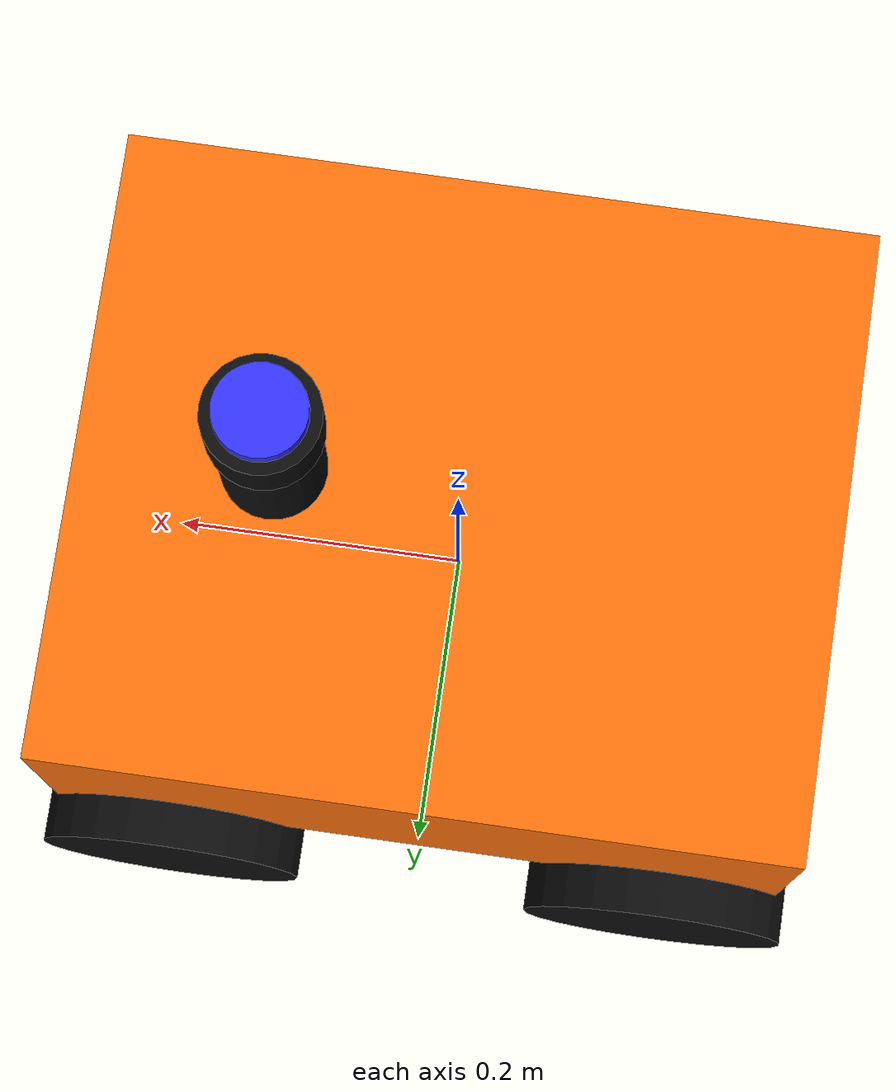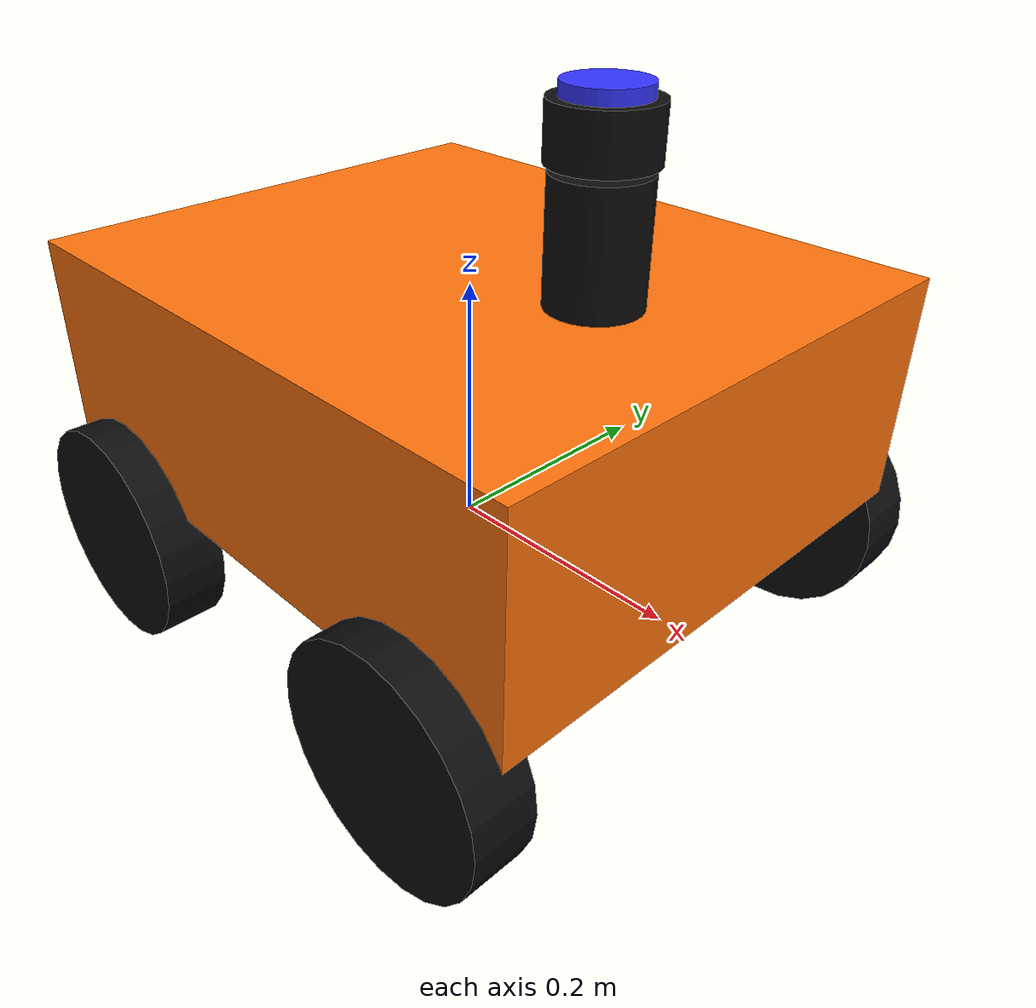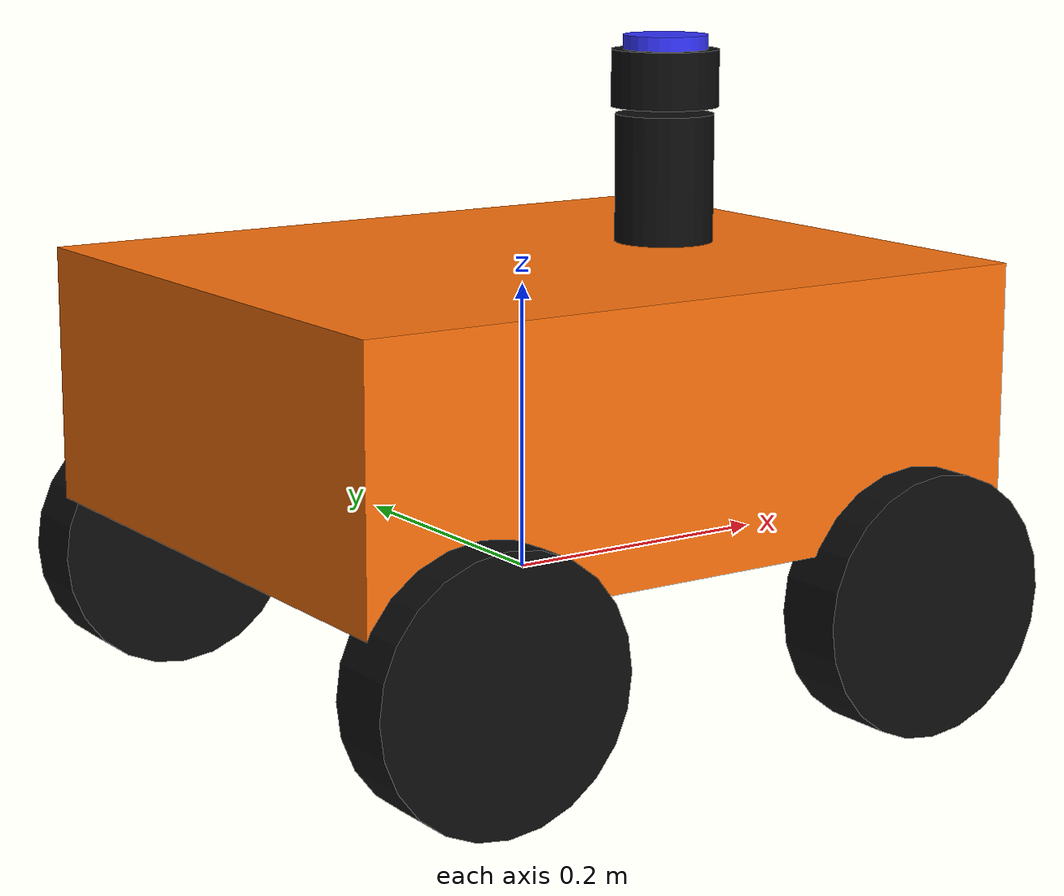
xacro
<?xml version="1.0"?>
<robot xmlns:xacro="http://www.ros.org/wiki/xacro" name="scout_bot">

    <xacro:include filename="inertial_macros.xacro"/>
    <xacro:include filename="robot_core.xacro"/>
    <xacro:include filename="gazebo_control.xacro"/>
    <xacro:include filename="lidar.xacro"/>

</robot>

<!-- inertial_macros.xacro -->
<robot xmlns:xacro="http://www.ros.org/wiki/xacro">

    <xacro:macro name="inertial_sphere" params="mass radius *origin">
        <inertial>
            <xacro:insert_block name="origin"/>
            <mass value="${mass}" />
            <inertia ixx="${(2/5) * mass * (radius*radius)}" ixy="0.0" ixz="0.0"
                     iyy="${(2/5) * mass * (radius*radius)}" iyz="0.0"
                     izz="${(2/5) * mass * (radius*radius)}" />
        </inertial>
    </xacro:macro>

    <xacro:macro name="inertial_box" params="mass x y z *origin">
        <inertial>
            <xacro:insert_block name="origin"/>
            <mass value="${mass}" />
            <inertia ixx="${(1/12) * mass * (y*y+z*z)}" ixy="0.0" ixz="0.0"
                     iyy="${(1/12) * mass * (x*x+z*z)}" iyz="0.0"
                     izz="${(1/12) * mass * (x*x+y*y)}" />
        </inertial>
    </xacro:macro>

    <xacro:macro name="inertial_cylinder" params="mass length radius *origin">
        <inertial>
            <xacro:insert_block name="origin"/>
            <mass value="${mass}" />
            <inertia ixx="${(1/12) * mass * (3*radius*radius + length*length)}" ixy="0.0" ixz="0.0"
                     iyy="${(1/12) * mass * (3*radius*radius + length*length)}" iyz="0.0"
                     izz="${(1/2) * mass * (radius*radius)}" />
        </inertial>
    </xacro:macro>

</robot>

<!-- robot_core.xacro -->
<robot xmlns:xacro="http://www.ros.org/wiki/xacro">

    <!-- Geometry constants (metres) -->
    <xacro:property name="chassis_length" value="0.50"/>
    <xacro:property name="chassis_width"  value="0.42"/>
    <xacro:property name="chassis_height" value="0.18"/>
    <xacro:property name="wheel_radius"   value="0.09"/>
    <xacro:property name="wheel_width"    value="0.05"/>
    <xacro:property name="wheel_x"        value="0.17"/>   <!-- half wheel base -->
    <xacro:property name="wheel_y"        value="0.215"/>  <!-- half track width -->

    <material name="white">  <color rgba="1 1 1 1"/>          </material>
    <material name="orange"> <color rgba="1 0.45 0.05 1"/>    </material>
    <material name="blue">   <color rgba="0.2 0.2 1 1"/>      </material>
    <material name="black">  <color rgba="0.05 0.05 0.05 1"/> </material>
    <material name="gray">   <color rgba="0.5 0.5 0.5 1"/>    </material>

    <!-- BASE LINK: origin sits on the wheel axle centre line -->
    <link name="base_link"/>

    <!-- BASE FOOTPRINT: projection of base_link onto the floor -->
    <joint name="base_footprint_joint" type="fixed">
        <parent link="base_link"/>
        <child  link="base_footprint"/>
        <origin xyz="0 0 -${wheel_radius}" rpy="0 0 0"/>
    </joint>
    <link name="base_footprint"/>

    <!-- CHASSIS -->
    <joint name="chassis_joint" type="fixed">
        <parent link="base_link"/>
        <child  link="chassis"/>
        <origin xyz="0 0 0" rpy="0 0 0"/>
    </joint>

    <link name="chassis">
        <visual>
            <origin xyz="0 0 ${chassis_height/2 + 0.04}" rpy="0 0 0"/>
            <geometry>
                <box size="${chassis_length} ${chassis_width} ${chassis_height}"/>
            </geometry>
            <material name="orange"/>
        </visual>
        <collision>
            <origin xyz="0 0 ${chassis_height/2 + 0.04}" rpy="0 0 0"/>
            <geometry>
                <box size="${chassis_length} ${chassis_width} ${chassis_height}"/>
            </geometry>
        </collision>
        <xacro:inertial_box mass="18.0" x="${chassis_length}" y="${chassis_width}" z="${chassis_height}">
            <origin xyz="0 0 ${chassis_height/2 + 0.04}" rpy="0 0 0"/>
        </xacro:inertial_box>
    </link>
    <gazebo reference="chassis">
        <material>Gazebo/Orange</material>
    </gazebo>

    <!-- SENSOR MAST: raises the LiDAR above the chassis deck -->
    <joint name="mast_joint" type="fixed">
        <parent link="chassis"/>
        <child  link="mast"/>
        <origin xyz="0.12 0 ${chassis_height + 0.04}" rpy="0 0 0"/>
    </joint>

    <link name="mast">
        <visual>
            <origin xyz="0 0 0.045" rpy="0 0 0"/>
            <geometry>
                <cylinder radius="0.035" length="0.09"/>
            </geometry>
            <material name="black"/>
        </visual>
        <collision>
            <origin xyz="0 0 0.045" rpy="0 0 0"/>
            <geometry>
                <cylinder radius="0.035" length="0.09"/>
            </geometry>
        </collision>
        <xacro:inertial_cylinder mass="0.4" length="0.09" radius="0.035">
            <origin xyz="0 0 0.045" rpy="0 0 0"/>
        </xacro:inertial_cylinder>
    </link>
    <gazebo reference="mast">
        <material>Gazebo/FlatBlack</material>
    </gazebo>

    <!-- ================== WHEELS ================== -->
    <!-- prefix: front_left / front_right / back_left / back_right
         x_sign: +1 front, -1 back      y_sign: +1 left, -1 right -->
    <xacro:macro name="drive_wheel" params="prefix x_sign y_sign colour gz_colour">
        <joint name="${prefix}_wheel_joint" type="continuous">
            <parent link="base_link"/>
            <child  link="${prefix}_wheel"/>
            <origin xyz="${x_sign * wheel_x} ${y_sign * wheel_y} 0"
                    rpy="${-y_sign * pi/2} 0 0"/>
            <axis xyz="0 0 ${y_sign}"/>
            <dynamics damping="0.05" friction="0.05"/>
        </joint>

        <link name="${prefix}_wheel">
            <visual>
                <geometry>
                    <cylinder radius="${wheel_radius}" length="${wheel_width}"/>
                </geometry>
                <material name="${colour}"/>
            </visual>
            <collision>
                <geometry>
                    <cylinder radius="${wheel_radius}" length="${wheel_width}"/>
                </geometry>
            </collision>
            <xacro:inertial_cylinder mass="1.5" length="${wheel_width}" radius="${wheel_radius}">
                <origin xyz="0 0 0" rpy="0 0 0"/>
            </xacro:inertial_cylinder>
        </link>

        <gazebo reference="${prefix}_wheel">
            <material>Gazebo/${gz_colour}</material>
            <fdir1>0 0 1</fdir1>
            <mu1>0.2</mu1>
            <mu2>1.0</mu2>
            <kp>1000000.0</kp>
            <kd>10.0</kd>
        </gazebo>
    </xacro:macro>

    <xacro:drive_wheel prefix="front_left"  x_sign="1"  y_sign="1"  colour="black" gz_colour="FlatBlack"/>
    <xacro:drive_wheel prefix="front_right" x_sign="1"  y_sign="-1" colour="black" gz_colour="FlatBlack"/>
    <xacro:drive_wheel prefix="back_left"   x_sign="-1" y_sign="1"  colour="black" gz_colour="FlatBlack"/>
    <xacro:drive_wheel prefix="back_right"  x_sign="-1" y_sign="-1" colour="black" gz_colour="FlatBlack"/>

</robot>

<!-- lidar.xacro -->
<robot xmlns:xacro="http://www.ros.org/wiki/xacro">

    <joint name="laser_joint" type="fixed">
        <parent link="mast"/>
        <child  link="laser_frame"/>
        <origin xyz="0 0 0.115" rpy="0 0 0"/>
    </joint>

    <link name="laser_frame">
        <visual>
            <geometry>
                <cylinder radius="0.038" length="0.04"/>
            </geometry>
            <material name="black"/>
        </visual>
        <visual>
            <origin xyz="0 0 0.025" rpy="0 0 0"/>
            <geometry>
                <cylinder radius="0.03" length="0.01"/>
            </geometry>
            <material name="blue"/>
        </visual>
        <collision>
            <geometry>
                <cylinder radius="0.038" length="0.04"/>
            </geometry>
        </collision>
        <xacro:inertial_cylinder mass="0.15" length="0.04" radius="0.038">
            <origin xyz="0 0 0" rpy="0 0 0"/>
        </xacro:inertial_cylinder>
    </link>

    <gazebo reference="laser_frame">
        <material>Gazebo/FlatBlack</material>

        <sensor name="lidar_2d" type="ray">
            <pose>0 0 0 0 0 0</pose>
            <visualize>true</visualize>
            <always_on>true</always_on>
            <update_rate>10</update_rate>
            <ray>
                <scan>
                    <horizontal>
                        <samples>720</samples>
                        <resolution>1</resolution>
                        <min_angle>-3.141592</min_angle>
                        <max_angle>3.141592</max_angle>
                    </horizontal>
                </scan>
                <range>
                    <min>0.15</min>
                    <max>16.0</max>
                    <resolution>0.01</resolution>
                </range>
                <noise>
                    <type>gaussian</type>
                    <mean>0.0</mean>
                    <stddev>0.01</stddev>
                </noise>
            </ray>

            <plugin name="lidar_controller" filename="libgazebo_ros_ray_sensor.so">
                <ros>
                    <remapping>~/out:=scan</remapping>
                </ros>
                <output_type>sensor_msgs/LaserScan</output_type>
                <frame_name>laser_frame</frame_name>
            </plugin>
        </sensor>
    </gazebo>

</robot>
